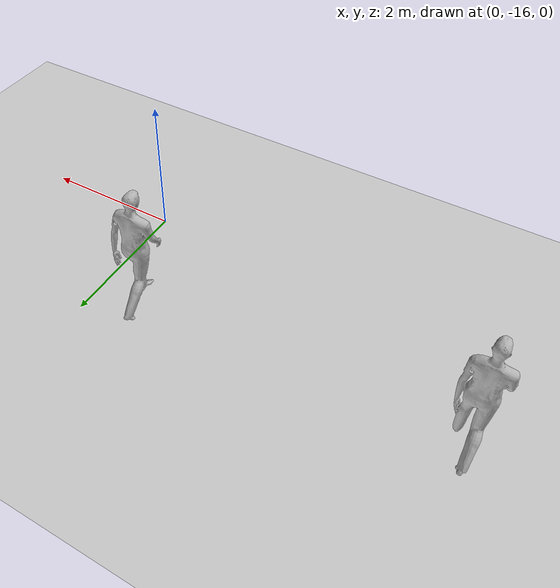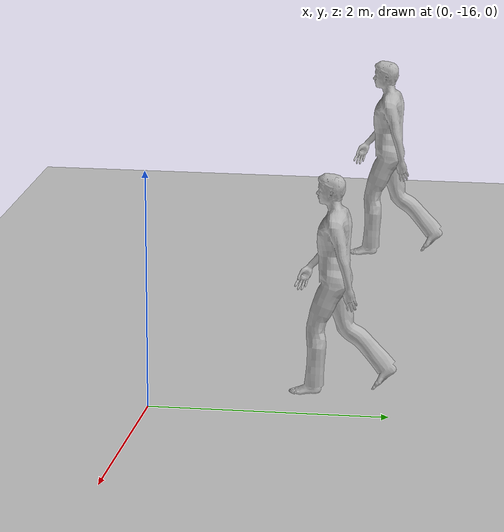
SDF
<?xml version="1.0" ?>
<sdf version="1.5">
  <world name="default">
    <!-- A global light source -->
    <include>
      <uri>model://sun</uri>
    </include>
    <!-- A ground plane -->
    <include>
      <uri>model://ground_plane</uri>
    </include>
    <include>
      <uri>model://asphalt_plane</uri>
    </include>

    <model name='person_walking'>
      <link name='link'>
        <inertial>
          <pose frame=''>0 0 -0.02 0 -0 0</pose>
          <mass>80</mass>
          <inertia>
            <ixx>27.82</ixx>
            <ixy>0</ixy>
            <ixz>0</ixz>
            <iyy>24.88</iyy>
            <iyz>0</iyz>
            <izz>4.57</izz>
          </inertia>
        </inertial>
        <collision name='bottom'>
          <pose frame=''>0 0 0.01 0 -0 0</pose>
          <geometry>
            <box>
              <size>0.35 0.75 0.02</size>
            </box>
          </geometry>
          <max_contacts>10</max_contacts>
          <surface>
            <contact>
              <ode/>
            </contact>
            <bounce/>
            <friction>
              <torsional>
                <ode/>
              </torsional>
              <ode/>
            </friction>
          </surface>
        </collision>
        <collision name='person'>
          <pose frame=''>0 0 -0.02 0 -0 0</pose>
          <geometry>
            <mesh>
              <uri>model://person_walking/meshes/walking.dae</uri>
              <scale>0.01 0.01 0.01</scale>
            </mesh>
          </geometry>
          <max_contacts>10</max_contacts>
          <surface>
            <contact>
              <ode/>
            </contact>
            <bounce/>
            <friction>
              <torsional>
                <ode/>
              </torsional>
              <ode/>
            </friction>
          </surface>
        </collision>
        <visual name='visual'>
          <pose frame=''>0 0 -0.02 0 -0 0</pose>
          <geometry>
            <mesh>
              <uri>model://person_walking/meshes/walking.dae</uri>
              <scale>1 1 1</scale>
            </mesh>
          </geometry>
        </visual>
        <self_collide>0</self_collide>
        <kinematic>0</kinematic>
        <gravity>0</gravity>
      </link>
      <pose frame=''>-0.64 -14.5 -0.000109 -3e-05 1.2e-05 3.7e-05</pose>
    </model>

<model name='person_walking_0'>
      <link name='link'>
        <inertial>
          <pose frame=''>0 0 -0.02 0 -0 0</pose>
          <mass>80</mass>
          <inertia>
            <ixx>27.82</ixx>
            <ixy>0</ixy>
            <ixz>0</ixz>
            <iyy>24.88</iyy>
            <iyz>0</iyz>
            <izz>4.57</izz>
          </inertia>
        </inertial>
        <collision name='bottom'>
          <pose frame=''>0 0 0.01 0 -0 0</pose>
          <geometry>
            <box>
              <size>0.35 0.75 0.02</size>
            </box>
          </geometry>
          <max_contacts>10</max_contacts>
          <surface>
            <contact>
              <ode/>
            </contact>
            <bounce/>
            <friction>
              <torsional>
                <ode/>
              </torsional>
              <ode/>
            </friction>
          </surface>
        </collision>
        <collision name='person'>
          <pose frame=''>0 0 -0.02 0 -0 0</pose>
          <geometry>
            <mesh>
              <uri>model://person_walking/meshes/walking.dae</uri>
              <scale>0.01 0.01 0.01</scale>
            </mesh>
          </geometry>
          <max_contacts>10</max_contacts>
          <surface>
            <contact>
              <ode/>
            </contact>
            <bounce/>
            <friction>
              <torsional>
                <ode/>
              </torsional>
              <ode/>
            </friction>
          </surface>
        </collision>
        <visual name='visual'>
          <pose frame=''>0 0 -0.02 0 -0 0</pose>
          <geometry>
            <mesh>
              <uri>model://person_walking/meshes/walking.dae</uri>
              <scale>1 1 1</scale>
            </mesh>
          </geometry>
        </visual>
        <self_collide>0</self_collide>
        <kinematic>0</kinematic>
        <gravity>0</gravity>
      </link>
      <pose frame=''>-5.1 -14.6 1e-06 3e-06 5e-06 -9.3e-05</pose>
    </model>

    <physics name='default_physics' default='0' type='ode'>
      <gravity>0 0 -9.8066</gravity>
      <ode>
        <solver>
          <type>quick</type>
          <iters>10</iters>
          <sor>1.3</sor>
          <use_dynamic_moi_rescaling>0</use_dynamic_moi_rescaling>
        </solver>
        <constraints>
          <cfm>0</cfm>
          <erp>0.2</erp>
          <contact_max_correcting_vel>100</contact_max_correcting_vel>
          <contact_surface_layer>0.001</contact_surface_layer>
        </constraints>
      </ode>
      <max_step_size>0.004</max_step_size>
      <real_time_factor>1</real_time_factor>
      <real_time_update_rate>250</real_time_update_rate>
      <magnetic_field>6.0e-6 2.3e-5 -4.2e-5</magnetic_field>
    </physics>
  </world>
</sdf>
